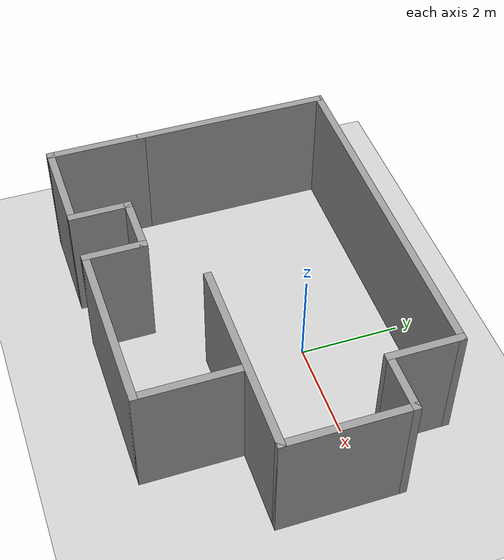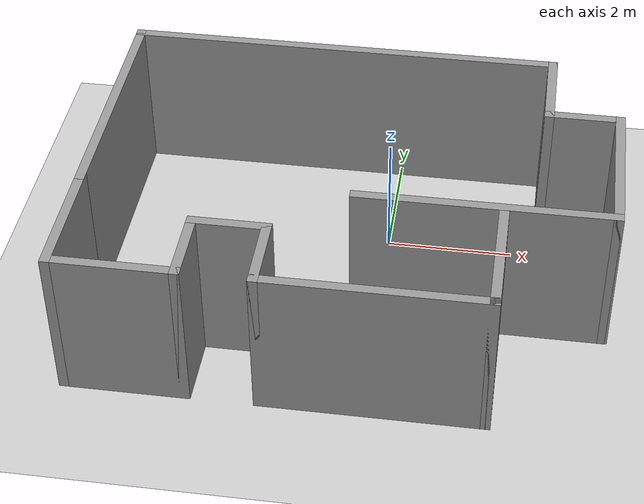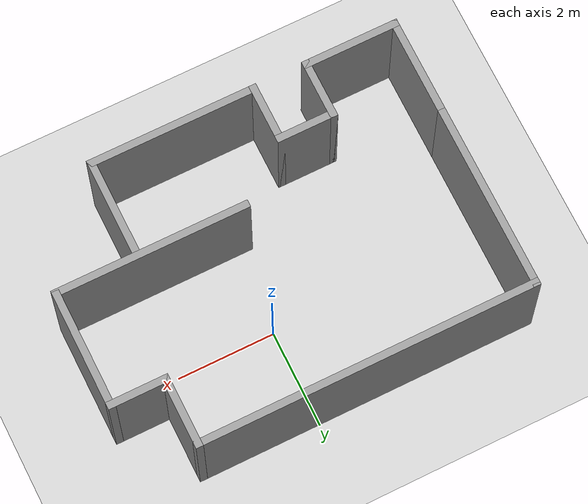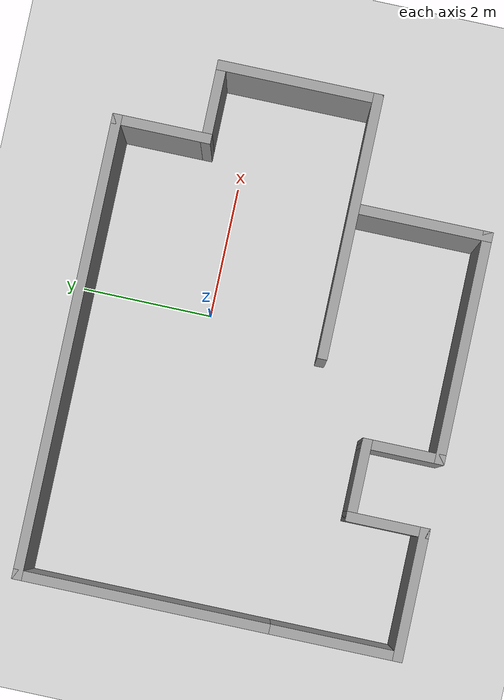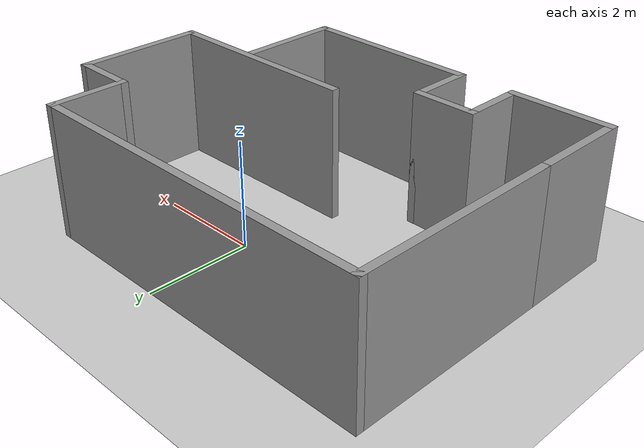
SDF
<sdf version="1.6">
 <world name="default">
  <scene><ambient>0.4 0.4 0.4 1</ambient><background>0.7 0.7 0.7 1</background><shadows>1</shadows></scene>
  <light name="sun" type="directional">
   <pose>0 0 10 0 -0 0</pose>
   <diffuse>0.8 0.8 0.8 1</diffuse>
   <specular>0.2 0.2 0.2 1</specular>
   <attenuation>
    <range>1000</range>
    <constant>0.9</constant>
    <linear>0.01</linear>
    <quadratic>0.001</quadratic>
   </attenuation>
   <direction>-0.5 0.1 -0.9</direction>
  </light>
  <model name="ground_plane">
   <static>1</static>
   <link name="link">
    <collision name="collision">
     <geometry><plane><normal>0 0 1</normal><size>100 100</size></plane></geometry>
     <surface><friction><ode><mu>100</mu><mu2>50</mu2></ode></friction></surface>
    </collision>
    <visual name="visual">
     <cast_shadows>0</cast_shadows>
     <geometry><plane><normal>0 0 1</normal><size>100 100</size></plane></geometry>
     <material>
      <script><uri>file://media/materials/scripts/gazebo.material</uri><name>Gazebo/Grey</name></script>
     </material>
    </visual>
   </link>
  </model>
  <model name="room">
   <pose>-0.4545 -0.94 0 0 -0 0</pose>
   <link name="Wall_11">
    <collision name="Wall_11_Collision">
     <geometry><box><size>2.5 0.15 2.5</size></box></geometry>
     <pose>0 0 1.25 0 -0 0</pose>
    </collision>
    <visual name="Wall_11_Visual">
     <pose>0 0 1.25 0 -0 0</pose>
     <geometry><box><size>2.5 0.15 2.5</size></box></geometry>
     <material>
      <script><uri>file://media/materials/scripts/gazebo.material</uri><name>Gazebo/Grey</name></script>
      <ambient>1 1 1 1</ambient>
     </material>
     <meta><layer>0</layer></meta>
    </visual>
    <pose>3.975 0.325 0 0 -0 1.5708</pose>
   </link>
   <link name="Wall_12">
    <collision name="Wall_12_Collision">
     <geometry><box><size>1.25 0.15 2.5</size></box></geometry>
     <pose>0 0 1.25 0 -0 0</pose>
    </collision>
    <visual name="Wall_12_Visual">
     <pose>0 0 1.25 0 -0 0</pose>
     <geometry><box><size>1.25 0.15 2.5</size></box></geometry>
     <material>
      <script><uri>file://media/materials/scripts/gazebo.material</uri><name>Gazebo/Grey</name></script>
      <ambient>1 1 1 1</ambient>
     </material>
     <meta><layer>0</layer></meta>
    </visual>
    <pose>3.425 1.5 0 0 -0 3.14159</pose>
   </link>
   <link name="Wall_15">
    <collision name="Wall_15_Collision">
     <geometry><box><size>1.5 0.15 2.5</size></box></geometry>
     <pose>0 0 1.25 0 -0 0</pose>
    </collision>
    <visual name="Wall_15_Visual">
     <pose>0 0 1.25 0 -0 0</pose>
     <geometry><box><size>1.5 0.15 2.5</size></box></geometry>
     <material>
      <script><uri>file://media/materials/scripts/gazebo.material</uri><name>Gazebo/Grey</name></script>
      <ambient>1 1 1 1</ambient>
     </material>
     <meta><layer>0</layer></meta>
    </visual>
    <pose>2.875 2.175 0 0 -0 1.5708</pose>
   </link>
   <link name="Wall_16">
    <collision name="Wall_16_Collision">
     <geometry><box><size>7 0.15 2.5</size></box></geometry>
     <pose>0 0 1.25 0 -0 0</pose>
    </collision>
    <visual name="Wall_16_Visual">
     <pose>0 0 1.25 0 -0 0</pose>
     <geometry><box><size>7 0.15 2.5</size></box></geometry>
     <material>
      <script><uri>file://media/materials/scripts/gazebo.material</uri><name>Gazebo/Grey</name></script>
      <ambient>1 1 1 1</ambient>
     </material>
     <meta><layer>0</layer></meta>
    </visual>
    <pose>-0.55 2.85 0 0 -0 3.14159</pose>
   </link>
   <link name="Wall_17">
    <collision name="Wall_17_Collision">
     <geometry><box><size>4 0.15 2.5</size></box></geometry>
     <pose>0 0 1.25 0 -0 0</pose>
    </collision>
    <visual name="Wall_17_Visual">
     <pose>0 0 1.25 0 -0 0</pose>
     <geometry><box><size>4 0.15 2.5</size></box></geometry>
     <material>
      <script><uri>file://media/materials/scripts/gazebo.material</uri><name>Gazebo/Grey</name></script>
      <ambient>1 1 1 1</ambient>
     </material>
     <meta><layer>0</layer></meta>
    </visual>
    <pose>-3.975 0.925 0 0 -0 -1.5708</pose>
   </link>
   <link name="Wall_19">
    <collision name="Wall_19_Collision">
     <geometry><box><size>2 0.15 2.5</size></box></geometry>
     <pose>0 0 1.25 0 -0 0</pose>
    </collision>
    <visual name="Wall_19_Visual">
     <pose>0 0 1.25 0 -0 0</pose>
     <geometry><box><size>2 0.15 2.5</size></box></geometry>
     <material>
      <script><uri>file://media/materials/scripts/gazebo.material</uri><name>Gazebo/Grey</name></script>
      <ambient>1 1 1 1</ambient>
     </material>
     <meta><layer>0</layer></meta>
    </visual>
    <pose>-3.975 -1.925 0 0 -0 -1.5708</pose>
   </link>
   <link name="Wall_20">
    <collision name="Wall_20_Collision">
     <geometry><box><size>2 0.15 2.5</size></box></geometry>
     <pose>0 0 1.25 0 -0 0</pose>
    </collision>
    <visual name="Wall_20_Visual">
     <pose>0 0 1.25 0 -0 0</pose>
     <geometry><box><size>2 0.15 2.5</size></box></geometry>
     <material>
      <script><uri>file://media/materials/scripts/gazebo.material</uri><name>Gazebo/Grey</name></script>
      <ambient>1 1 1 1</ambient>
     </material>
     <meta><layer>0</layer></meta>
    </visual>
    <pose>-3.05 -2.85 0 0 -0 0</pose>
   </link>
   <link name="Wall_21">
    <collision name="Wall_21_Collision">
     <geometry><box><size>1.25 0.15 2.5</size></box></geometry>
     <pose>0 0 1.25 0 -0 0</pose>
    </collision>
    <visual name="Wall_21_Visual">
     <pose>0 0 1.25 0 -0 0</pose>
     <geometry><box><size>1.25 0.15 2.5</size></box></geometry>
     <material>
      <script><uri>file://media/materials/scripts/gazebo.material</uri><name>Gazebo/Grey</name></script>
      <ambient>1 1 1 1</ambient>
     </material>
     <meta><layer>0</layer></meta>
    </visual>
    <pose>-2.125 -2.3 0 0 -0 1.5708</pose>
   </link>
   <link name="Wall_22">
    <collision name="Wall_22_Collision">
     <geometry><box><size>1.25 0.15 2.5</size></box></geometry>
     <pose>0 0 1.25 0 -0 0</pose>
    </collision>
    <visual name="Wall_22_Visual">
     <pose>0 0 1.25 0 -0 0</pose>
     <geometry><box><size>1.25 0.15 2.5</size></box></geometry>
     <material>
      <script><uri>file://media/materials/scripts/gazebo.material</uri><name>Gazebo/Grey</name></script>
      <ambient>1 1 1 1</ambient>
     </material>
     <meta><layer>0</layer></meta>
    </visual>
    <pose>-1.575 -1.75 0 0 -0 0</pose>
   </link>
   <link name="Wall_23">
    <collision name="Wall_23_Collision">
     <geometry><box><size>1.25 0.15 2.5</size></box></geometry>
     <pose>0 0 1.25 0 -0 0</pose>
    </collision>
    <visual name="Wall_23_Visual">
     <pose>0 0 1.25 0 -0 0</pose>
     <geometry><box><size>1.25 0.15 2.5</size></box></geometry>
     <material>
      <script><uri>file://media/materials/scripts/gazebo.material</uri><name>Gazebo/Grey</name></script>
      <ambient>1 1 1 1</ambient>
     </material>
     <meta><layer>0</layer></meta>
    </visual>
    <pose>-1.025 -2.3 0 0 -0 -1.5708</pose>
   </link>
   <link name="Wall_24">
    <collision name="Wall_24_Collision">
     <geometry><box><size>3.5 0.15 2.5</size></box></geometry>
     <pose>0 0 1.25 0 -0 0</pose>
    </collision>
    <visual name="Wall_24_Visual">
     <pose>0 0 1.25 0 -0 0</pose>
     <geometry><box><size>3.5 0.15 2.5</size></box></geometry>
     <material>
      <script><uri>file://media/materials/scripts/gazebo.material</uri><name>Gazebo/Grey</name></script>
      <ambient>1 1 1 1</ambient>
     </material>
     <meta><layer>0</layer></meta>
    </visual>
    <pose>0.65 -2.85 0 0 -0 0</pose>
   </link>
   <link name="Wall_25">
    <collision name="Wall_25_Collision">
     <geometry><box><size>2 0.15 2.5</size></box></geometry>
     <pose>0 0 1.25 0 -0 0</pose>
    </collision>
    <visual name="Wall_25_Visual">
     <pose>0 0 1.25 0 -0 0</pose>
     <geometry><box><size>2 0.15 2.5</size></box></geometry>
     <material>
      <script><uri>file://media/materials/scripts/gazebo.material</uri><name>Gazebo/Grey</name></script>
      <ambient>1 1 1 1</ambient>
     </material>
     <meta><layer>0</layer></meta>
    </visual>
    <pose>2.325 -1.925 0 0 -0 1.5708</pose>
   </link>
   <link name="Wall_7">
    <collision name="Wall_7_Collision">
     <geometry><box><size>4 0.15 2.5</size></box></geometry>
     <pose>0 0 1.25 0 -0 0</pose>
    </collision>
    <visual name="Wall_7_Visual">
     <pose>0 0 1.25 0 -0 0</pose>
     <geometry><box><size>4 0.15 2.5</size></box></geometry>
     <material>
      <script><uri>file://media/materials/scripts/gazebo.material</uri><name>Gazebo/Grey</name></script>
      <ambient>1 1 1 1</ambient>
     </material>
     <meta><layer>0</layer></meta>
    </visual>
    <pose>2.05 -0.85 0 0 -0 0</pose>
   </link>
   <static>1</static>
  </model>
  <physics name="default_physics" default="0" type="ode">
   <real_time_update_rate>1000</real_time_update_rate>
   <max_step_size>0.001</max_step_size>
   <real_time_factor>1</real_time_factor>
   <ode>
    <solver>
     <type>quick</type>
     <iters>150</iters>
     <precon_iters>0</precon_iters>
     <sor>1.4</sor>
     <use_dynamic_moi_rescaling>1</use_dynamic_moi_rescaling>
    </solver>
    <constraints>
     <cfm>1e-05</cfm>
     <erp>0.2</erp>
     <contact_max_correcting_vel>2000</contact_max_correcting_vel>
     <contact_surface_layer>0.01</contact_surface_layer>
    </constraints>
   </ode>
  </physics>
  <gravity>0 0 -9.8</gravity>
  <magnetic_field>6e-06 2.3e-05 -4.2e-05</magnetic_field>
  <atmosphere type="adiabatic"/>
  <audio><device>default</device></audio>
  <spherical_coordinates>
   <surface_model>EARTH_WGS84</surface_model>
   <latitude_deg>0</latitude_deg>
   <longitude_deg>0</longitude_deg>
   <elevation>0</elevation>
   <heading_deg>0</heading_deg>
  </spherical_coordinates>
 </world>
</sdf>
